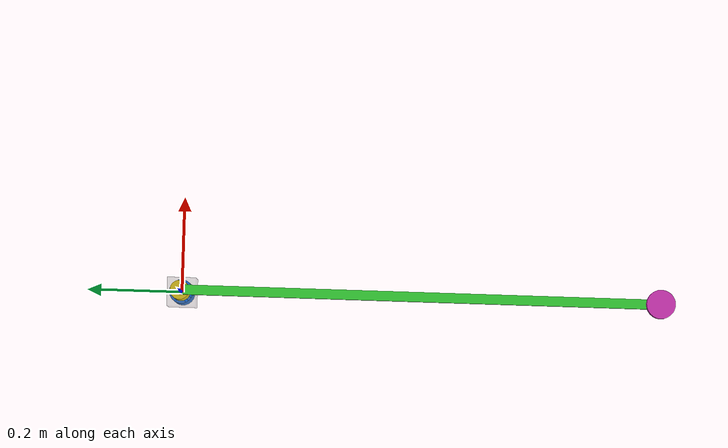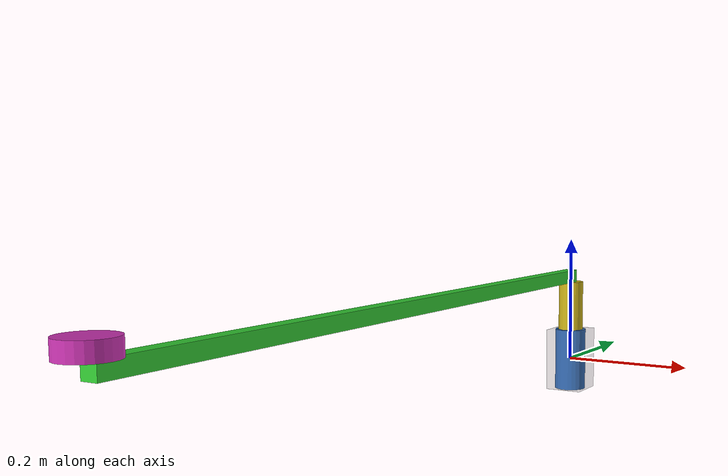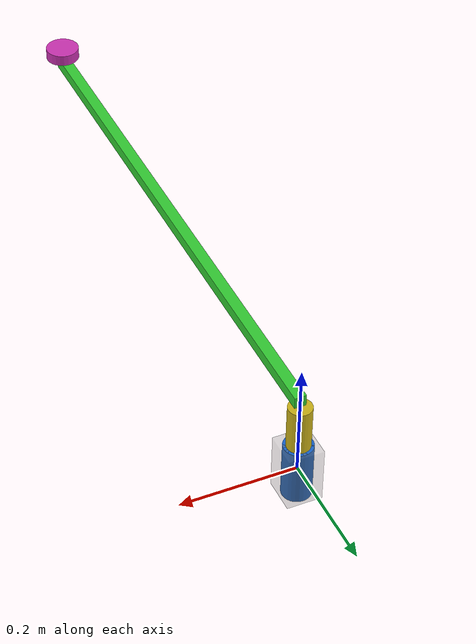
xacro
<?xml version="1.0"?>
<robot name="one_dof_pendulum" xmlns:xacro="http://www.ros.org/wiki/xacro">

    <xacro:include filename="$(find bam_descriptions)/urdf/common.xacro" />

    <xacro:include filename="$(find bam_descriptions)/urdf/one_dof/one_dof_macro.xacro" />

    <xacro:arg name="ros2_control" default="true"/>
    <xacro:property name="ros2_control" value="$(arg ros2_control)" />

    <xacro:arg name="transport_path" default=""/>
    <xacro:property name="transport_path" value="$(arg transport_path)" />

    <xacro:arg name="plugin" default="mock"/>  <!-- none, mock, gazebo, real -->
    <xacro:property name="plugin" value="$(arg plugin)" />

    <xacro:arg name="controllers_file_path" default="$(find bam_core_bringup)/config/controllers/one_dof_controllers.yaml"/>
    <xacro:property name="controllers_file_path" value="$(arg controllers_file_path)" />

    <xacro:arg name="ros_namespace" default="bam_GPU"/>
    <xacro:property name="ros_namespace" value="$(arg ros_namespace)" />

    <!-- Define args for all macro parameters with defaults, so they can be set from the outside -->
    <xacro:arg name="rotor_diameter" default="0.05"/>
    <xacro:arg name="rotor_length" default="0.1"/>
    <xacro:arg name="rotor_mass" default="0.2"/>
    <xacro:arg name="gearbox_diameter" default="0.04"/>
    <xacro:arg name="gearbox_length" default="0.08"/>
    <xacro:arg name="gearbox_mass" default="0.15"/>
    <xacro:arg name="arm_width" default="0.02"/>
    <xacro:arg name="arm_length" default="1.0"/>
    <xacro:arg name="arm_mass" default="0.05"/>
    <xacro:arg name="payload_diameter" default="0.06"/>
    <xacro:arg name="payload_thickness" default="0.02"/>
    <xacro:arg name="payload_mass" default="0.1"/>
    <xacro:arg name="payload_distance" default="1.0"/>
    <xacro:arg name="mounting_angle" default="0.0"/>

    <!-- Set properties from args for convenience -->
    <xacro:property name="rotor_diameter" value="$(arg rotor_diameter)"/>
    <xacro:property name="rotor_length" value="$(arg rotor_length)"/>
    <xacro:property name="rotor_mass" value="$(arg rotor_mass)"/>
    <xacro:property name="gearbox_diameter" value="$(arg gearbox_diameter)"/>
    <xacro:property name="gearbox_length" value="$(arg gearbox_length)"/>
    <xacro:property name="gearbox_mass" value="$(arg gearbox_mass)"/>
    <xacro:property name="arm_width" value="$(arg arm_width)"/>
    <xacro:property name="arm_length" value="$(arg arm_length)"/>
    <xacro:property name="arm_mass" value="$(arg arm_mass)"/>
    <xacro:property name="payload_diameter" value="$(arg payload_diameter)"/>
    <xacro:property name="payload_thickness" value="$(arg payload_thickness)"/>
    <xacro:property name="payload_mass" value="$(arg payload_mass)"/>
    <xacro:property name="payload_distance" value="$(arg payload_distance)"/>
    <xacro:property name="mounting_angle" value="$(arg mounting_angle)"/>

    <link name="world"/>   <!-- Attach to Gazebo World -->

    <joint name="world_to_base" type="fixed">
        <origin xyz="0 0 0" rpy="0 0 0"/>
        <parent link="world"/>
        <child link="base_link"/>
    </joint>

    <link name="base_link">
        <xacro:dummy_inertial/>
    </link>

    <joint name="base_link_to_motor_housing" type="fixed">
        <parent link="base_link"/>
        <child link="motor_housing"/>
        <origin xyz="0 0 0.0" rpy="${mounting_angle} 0 0"/>
    </joint>

        <!-- Instantiate the macro with all parameters -->
    <xacro:one_dof
        rotor_diameter="${rotor_diameter}"
        rotor_length="${rotor_length}"
        rotor_mass="${rotor_mass}"
        gearbox_diameter="${gearbox_diameter}"
        gearbox_length="${gearbox_length}"
        gearbox_mass="${gearbox_mass}"
        arm_width="${arm_width}"
        arm_length="${arm_length}"
        arm_mass="${arm_mass}"
        payload_diameter="${payload_diameter}"
        payload_thickness="${payload_thickness}"
        payload_mass="${payload_mass}"
        payload_distance="${payload_distance}"
    />

    <xacro:if value="${ros2_control}">
        <xacro:include filename="$(find bam_descriptions)/urdf/one_dof/one_dof.ros2_control.xacro"/>
        <xacro:one_dof_ros2_control plugin="${plugin}" transport_path="${transport_path}" controllers_file_path="${controllers_file_path}" ros_namespace="${ros_namespace}"/>
    </xacro:if>

</robot>

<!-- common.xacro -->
<robot xmlns:xacro="http://www.ros.org/wiki/xacro">

  <xacro:property name="deg2rad" value="${pi/180}"/>
  <xacro:property name="rev2rad" value="${2*pi}"/>
  <xacro:property name="inch2m" value="${25.4/1000}"/>
  <xacro:property name="mm2m" value="${1/1000}"/>

  <xacro:macro name="cylinder_tube_link" params="name outer_radius inner_radius length density origin_offset mass=-1 material='StoglRobotics/LightGrey'">
    <!-- Length goes along z axis -->

      <link name="${name}">

        <xacro:if value="${mass == -1}">
          <xacro:property name="outer_area" value="${outer_radius * outer_radius * pi}"/>
          <xacro:property name="inner_area" value="${inner_radius * inner_radius * pi}"/>
          <xacro:property name="volume" value="${length * (outer_area - inner_area)}"/>
          <xacro:property name="mass" value="${volume * density}"/>
        </xacro:if>

        <visual>
          <origin xyz="0 0 ${origin_offset}" rpy="0 0 0"/>
          <geometry>
              <cylinder length="${length}" radius="${outer_radius}"/>
          </geometry>
          <material name="${material}"/>
        </visual>

        <collision>
          <origin xyz="0 0 ${origin_offset}" rpy="0 0 0"/>
          <geometry>
              <cylinder length="${length}" radius="${outer_radius}"/>
          </geometry>
        </collision>

        <xacro:cylinder_inertial length="${length}" outer_radius="${outer_radius}" inner_radius="${inner_radius}" mass="${mass}" origin_xyz="0 0 ${origin_offset}"/>

      </link>
  </xacro:macro>

  <xacro:macro name="rectangular_tube_link"
      params="name width length height wall_thickness density origin_offset mass=-1 material='StoglRobotics/LightGrey'"> -->

      <!-- Length goes along y, width goes along x, height goes along z -->

      <!-- length goes from hole to hole, while link_total_length goes from outer edge to outer edge. To center link around holes, add width/2 to both ends -->
      <xacro:if value="${mass == -1}">
        <xacro:property name="outer_area" value="${width * height}"/>
        <xacro:property name="inner_area" value="${(width - 2*wall_thickness) * (height - 2*wall_thickness)}"/>
        <xacro:property name="volume" value="${length * (outer_area - inner_area)}"/>
        <xacro:property name="mass" value="${volume * density}"/>
      </xacro:if>

      <link name="${name}">

        <!-- It may make more sense to have origin in center of thickness, but when you export as cade, usally is done from edge -->
        <visual>
            <origin xyz="0 ${origin_offset} ${height/2}" rpy="0 0 0"/>
            <geometry>
                <box size="${width} ${length} ${height}"/>
            </geometry>
            <material name="${material}"/>
        </visual>

        <collision>
            <origin xyz="0 ${origin_offset} ${height/2}" rpy="0 0 0"/>
            <geometry>
                <box size="${width} ${length} ${height}"/>
            </geometry>
        </collision>

        <xacro:solid_cuboid_inertial width="${width}" height="${length}" depth="${height}" mass="${mass}" origin_xyz="0 ${origin_offset} ${height/2}"/>
      </link>

  </xacro:macro>

  <xacro:macro name="rectangular_plate_link" params="name width length plate_thickness density origin_offset mass=-1 material='StoglRobotics/LightGrey'">
      <!-- Origin offset is usally length/2 or length/2 + width/2 + width/2  -->
      <!-- length goes from hole to hole, while link_total_length goes from outer edge to outer edge. To center link around holes, add width/2 to both ends -->

      <!-- Length goes along y, width goes along x, thickness goes along z -->

      <xacro:if value="${mass == -1}">
        <xacro:property name="volume" value="${length * width * plate_thickness}"/>
        <xacro:property name="mass" value="${volume * density}"/>
      </xacro:if>

      <!-- It may make more sense to have origin in center of thickness, but when you export as cade, usally is done from edge -->
      <link name="${name}">

      <visual>
          <origin xyz="0 ${origin_offset} ${plate_thickness/2}" rpy="0 0 0"/>
          <geometry>
              <box size="${width} ${length} ${plate_thickness}"/>
          </geometry>
          <material name="${material}"/>
      </visual>

      <collision>
          <origin xyz="0 ${origin_offset} ${plate_thickness/2}" rpy="0 0 0"/>
          <geometry>
              <box size="${width} ${length} ${plate_thickness}"/>
          </geometry>
      </collision>

      <xacro:solid_cuboid_inertial width="${width}" height="${length}" depth="${plate_thickness}" mass="${mass}" origin_xyz="0 ${origin_offset} ${plate_thickness/2}"/>
      </link>

  </xacro:macro>

  <!-- https://en.wikipedia.org/wiki/List_of_moments_of_inertia#:~:text=Solid%20cuboid%20of%20width -->
  <!-- Inertia properties for wrist_link, scoped to this macro only -->
  <!-- Width goes along x, height goes along y, depth goes along z -->
  <xacro:macro name="solid_cuboid_inertial" params="width height depth mass origin_xyz">
      <xacro:property name="inertia_xx" value="${(1/12) * mass * (height * height + depth * depth)}"/>
      <xacro:property name="inertia_yy" value="${(1/12) * mass * (width * width + depth * depth)}"/>
      <xacro:property name="inertia_zz" value="${(1/12) * mass * (width * width + height * height)}"/>
      <inertial>
          <origin xyz="${origin_xyz}"/>
          <mass value="${mass}"/>
          <inertia ixx="${inertia_xx}" ixy="0" ixz="0"
                    iyy="${inertia_yy}" iyz="0"
                    izz="${inertia_zz}"/>
      </inertial>
  </xacro:macro>

  <!-- https://en.wikipedia.org/wiki/List_of_moments_of_inertia#:~:text=%5D-,Solid%20cylinder%20of,-radius%20r%2C%20height -->
  <!-- Inertia properties for motor block, scoped to this macro only -->
  <!-- I initally thought it should be outer_radius - inner_radius, but actually a hollow cylinder should have a higher interia! as more mass further away -->
  <xacro:macro name="cylinder_inertial" params="length outer_radius mass origin_xyz inner_radius=0">
      <xacro:property name="inertia_xx" value="${(1/12) * mass * (3*(outer_radius*outer_radius + inner_radius*inner_radius) + length*length)}"/>
      <xacro:property name="inertia_yy" value="${(1/12) * mass * (3*(outer_radius*outer_radius + inner_radius*inner_radius) + length*length)}"/>
      <xacro:property name="inertia_zz" value="${0.5*mass*(outer_radius*outer_radius + inner_radius*inner_radius)}"/>
      <inertial>
          <origin xyz="${origin_xyz}"/>
          <mass value="${mass}"/>
          <inertia ixx="${inertia_xx}" ixy="0" ixz="0"
                    iyy="${inertia_yy}" iyz="0"
                    izz="${inertia_zz}"/>
      </inertial>
  </xacro:macro>

<xacro:macro name="dummy_inertial">
<!-- Super small interia to not effect dynamics and small rviz interia box -->
    <inertial>
        <mass value="0.0001"/>
        <origin xyz="0 0 0" rpy="0 0 0"/>
        <inertia
            ixx="0.001" ixy="0.00001" ixz="0.00001"
            iyy="0.001" iyz="0.00001"
            izz="0.001"/>
    </inertial>
</xacro:macro>

<xacro:macro name="dummy_link">

  <!-- Small visual box so that link can be turned off in rviz -->
  <visual>
    <origin xyz="0 0 0" rpy="0 0 0"/>
    <geometry>
      <box size="0.001 0.001 0.001"/>
    </geometry>
    <material name="transparent_gray">
      <color rgba="0.5 0.5 0.5 0.1"/>
    </material>
  </visual>

  <xacro:dummy_inertial/>

</xacro:macro>

  <material name="StoglRobotics/Violet">
    <color rgba="${102/255} ${46/255} ${145/255} 1.0"/>
    <ambient>1 0 0 1</ambient>
    <diffuse>1 0 0 1</diffuse>
    <specular>0.1 0.1 0.1 1</specular>
    <emissive>0 0 0 0</emissive>
  </material>

  <material name="StoglRobotics/DarkGrey">
    <color rgba="${51/255} ${51/255} ${51/255} 1.0"/>
    <ambient>1 0 0 1</ambient>
    <diffuse>1 0 0 1</diffuse>
    <specular>0.1 0.1 0.1 1</specular>
    <emissive>0 0 0 0</emissive>
  </material>

  <material name="StoglRobotics/LightGrey">
    <color rgba="${194/255} ${194/255} ${194/255} 1.0"/>
    <ambient>1 0 0 1</ambient>
    <diffuse>1 0 0 1</diffuse>
    <specular>0.1 0.1 0.1 1</specular>
    <emissive>0 0 0 0</emissive>
  </material>

  <material name="Ghost">
    <color rgba="${194/255} ${194/255} ${194/255} 0.5"/>
    <ambient>1 0 0 1</ambient>
    <diffuse>1 0 0 1</diffuse>
    <specular>0.1 0.1 0.1 1</specular>
    <emissive>0 0 0 0</emissive>
  </material>

  <material name="Black">
    <color rgba="${0/255} ${0/255} ${0/255} 1"/>
    <ambient>1 0 0 1</ambient>
    <diffuse>1 0 0 1</diffuse>
    <specular>0.1 0.1 0.1 1</specular>
    <emissive>0 0 0 0</emissive>
  </material>

  <material name="White">
    <color rgba="${255/255} ${255/255} ${255/255} 1"/>
    <ambient>1 0 0 1</ambient>
    <diffuse>1 0 0 1</diffuse>
    <specular>0.1 0.1 0.1 1</specular>
    <emissive>0 0 0 0</emissive>
  </material>

  <material name="Red">
    <color rgba="1.0 0.0 0.0 1.0"/>
    <ambient>1 0 0 1</ambient>
    <diffuse>1 0 0 1</diffuse>
    <specular>0.1 0.1 0.1 1</specular>
    <emissive>0 0 0 0</emissive>
  </material>

  <material name="Orange">
    <color rgba="1.0 0.55 0.0 1.0"/>
    <ambient>1 0.5 0 1</ambient>
    <diffuse>1 0.5 0 1</diffuse>
    <specular>0.1 0.1 0.1 1</specular>
    <emissive>0 0 0 0</emissive>
  </material>

  <material name="Yellow">
    <color rgba="1.0 1.0 0.0 1.0"/>
    <ambient>1 1 0 1</ambient>
    <diffuse>1 1 0 1</diffuse>
    <specular>0.1 0.1 0.1 1</specular>
    <emissive>0 0 0 0</emissive>
  </material>

  <material name="Green">
    <color rgba="0.0 1.0 0.0 1.0"/>
    <ambient>0 1 0 1</ambient>
    <diffuse>0 1 0 1</diffuse>
    <specular>0.1 0.1 0.1 1</specular>
    <emissive>0 0 0 0</emissive>
  </material>

  <material name="Blue">
    <color rgba="0.0 0.0 1.0 1.0"/>
    <ambient>0 0 1 1</ambient>
    <diffuse>0 0 1 1</diffuse>
    <specular>0.1 0.1 0.1 1</specular>
    <emissive>0 0 0 0</emissive>
  </material>

  <material name="Indigo">
    <color rgba="0.29 0.0 0.51 1.0"/>
    <ambient>0.25 0 0.45 1</ambient>
    <diffuse>0.25 0 0.45 1</diffuse>
    <specular>0.1 0.1 0.1 1</specular>
    <emissive>0 0 0 0</emissive>
  </material>

  <material name="Violet">
    <color rgba="0.56 0.0 1.0 1.0"/>
    <ambient>0.5 0 1 1</ambient>
    <diffuse>0.5 0 1 1</diffuse>
    <specular>0.1 0.1 0.1 1</specular>
    <emissive>0 0 0 0</emissive>
  </material>

</robot>

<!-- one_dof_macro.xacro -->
<robot name="one_dof" xmlns:xacro="http://www.ros.org/wiki/xacro">

<xacro:macro name="one_dof" params="
    rotor_diameter
    rotor_length
    rotor_mass
    gearbox_diameter
    gearbox_length
    gearbox_mass
    arm_width
    arm_length
    arm_mass
    payload_diameter
    payload_thickness
    payload_mass
    payload_distance
      ">

  <!-- Parameter definitions for easy adjustment -->
  <!-- 3D moment of interia's from https://en.wikipedia.org/wiki/List_of_moments_of_inertia#:~:text=List%20of%203D%20inertia%20tensors -->
  <xacro:property name="rotor_diameter" value="$(arg rotor_diameter)"/>
  <xacro:property name="rotor_radius" value="${rotor_diameter/2}"/>
  <xacro:property name="rotor_length" value="$(arg rotor_length)"/>
  <xacro:property name="rotor_mass" value="$(arg rotor_mass)"/>
  <xacro:property name="rotor_inertia_zz" value="${10*10 * (0.58/(100*100))}"/> <!-- J_load = N**2 * J_rotor and kg*cm^2 -> kg*m^2 -->
  <xacro:property name="rotor_inertia_xx_yy" value="${rotor_inertia_zz * (0.5 + (rotor_length*rotor_radius/(6*rotor_radius*rotor_radius)))}"/> <!-- given the zz, calculate the xx and yy -->

  <xacro:property name="gearbox_diameter" value="$(arg gearbox_diameter)"/>
  <xacro:property name="gearbox_radius" value="${gearbox_diameter/2}"/>
  <xacro:property name="gearbox_length" value="$(arg gearbox_length)"/>
  <xacro:property name="gearbox_mass" value="$(arg gearbox_mass)"/>
  <xacro:property name="gearbox_inertia_zz" value="${0.13/(100*100)}"/> <!-- kg*cm^2 -> kg*m^2 -->
  <xacro:property name="gearbox_inertia_xx_yy" value="${gearbox_inertia_zz * (0.5 + (gearbox_length*gearbox_radius/(6*gearbox_radius*gearbox_radius)))}"/> <!-- given the zz, calculate the xx and yy -->

  <xacro:property name="arm_width" value="$(arg arm_width)"/>
  <xacro:property name="arm_length" value="$(arg arm_length)"/>
  <xacro:property name="arm_mass" value="$(arg arm_mass)"/>
  <xacro:property name="arm_inertia_xx_zz" value="${(1/12) * arm_mass * arm_length*arm_length}"/>

  <xacro:property name="payload_diameter" value="$(arg payload_diameter)"/>
  <xacro:property name="payload_radius" value="${payload_diameter/2}"/>
  <xacro:property name="payload_thickness" value="$(arg payload_thickness)"/>
  <xacro:property name="payload_mass" value="$(arg payload_mass)"/>
  <xacro:property name="payload_distance" value="$(arg payload_distance)"/>

  <!-- You don't acctually need the parrallel axis thoerm, urdf iwll handle that! -->
  <xacro:property name="payload_inertia_zz" value="${(0.5 * payload_mass * payload_radius*payload_radius)}"/> <!-- interia + parrallel axis theorem -->
  <xacro:property name="payload_inertia_xx_yy" value="${((1/12) * payload_mass * (3*payload_radius*payload_radius + payload_thickness*payload_thickness))}"/> <!-- interia + parrallel axis theorem -->

  <!-- Material definitions -->
  <material name="motor_housing">
    <color rgba="0.5 0.5 0.5 0.3"/>
  </material>

  <material name="rotor">
    <color rgba="0.1 0.4 0.8 1.0"/> <!-- blueish -->
  </material>

  <material name="gearbox">
    <color rgba="0.8 0.7 0.1 1.0"/> <!-- yellow/gold -->
  </material>

  <material name="arm">
    <color rgba="0.2 0.8 0.2 1.0"/> <!-- green -->
  </material>

  <material name="payload">
    <color rgba="0.8 0.2 0.7 1.0"/> <!-- magenta/pink -->
  </material>

  <link name="motor_housing">
    <visual>
      <geometry>
        <box size="${rotor_diameter*1.2} ${rotor_diameter*1.2} ${rotor_length}"/>
      </geometry>
      <material name="motor_housing"/>
    </visual>
  </link>

  <!-- rotor core cylinder -->
  <link name="rotor">
    <visual>
      <geometry>
        <cylinder radius="${rotor_diameter/2}" length="${rotor_length}"/>
      </geometry>
      <material name="rotor"/>
    </visual>
    <collision>
      <geometry>
        <cylinder radius="${rotor_diameter/2}" length="${rotor_length}"/>
      </geometry>
    </collision>
    <inertial>
      <origin xyz="0 0 0"/>
      <mass value="${rotor_mass}"/>
      <inertia ixx="${rotor_inertia_xx_yy}" ixy="0" ixz="0"
                iyy="${rotor_inertia_xx_yy}" iyz="0"
                izz="${rotor_inertia_zz}"/>
    </inertial>

  </link>

  <!-- Joint connecting rotor core to base -->
  <joint name="joint_1" type="revolute">
    <parent link="motor_housing"/>
    <child link="rotor"/>
    <origin xyz="0 0 0" rpy="0 0 ${-pi/2}"/>
    <axis xyz="0 0 1"/>
    <limit lower="${-2*pi}" upper="${2*pi}" effort="10" velocity="5"/>
    <dynamics damping="0.01" friction="0.1"/>

  </joint>

  <!-- Gearbox cylinder -->
  <link name="gearbox">
    <visual>
      <geometry>
        <cylinder radius="${gearbox_diameter/2}" length="${gearbox_length}"/>
      </geometry>
      <material name="gearbox"/>
    </visual>
    <collision>
      <geometry>
        <cylinder radius="${gearbox_diameter/2}" length="${gearbox_length}"/>
      </geometry>
    </collision>
    <inertial>
      <origin xyz="0 0 0"/>
      <mass value="${gearbox_mass}"/>
      <inertia ixx="${gearbox_inertia_xx_yy}" ixy="0" ixz="0"
                iyy="${gearbox_inertia_xx_yy}" iyz="0"
                izz="${gearbox_inertia_zz}"/>
    </inertial>
  </link>

  <!-- Joint connecting gearbox to rotor core -->
  <joint name="gearbox_joint" type="fixed">
    <parent link="rotor"/>
    <child link="gearbox"/>
    <origin xyz="0 0 ${gearbox_length/2 + rotor_length/2}" rpy="0 0 0"/>
  </joint>

  <!-- Pendulum arm (thin rectangular link) -->
  <link name="arm">
    <visual>
      <origin xyz="${arm_length/2} 0 0" rpy="0 ${pi/2} 0"/>
      <geometry>
        <box size="${arm_width} ${arm_width} ${arm_length}"/>
      </geometry>
      <material name="arm"/>
    </visual>
    <collision>
      <origin xyz="${arm_length/2} 0 0" rpy="0 ${pi/2} 0"/>
      <geometry>
        <box size="${arm_width} ${arm_width} ${arm_length}"/>
      </geometry>
    </collision>
    <inertial>
      <origin xyz="${arm_length/2} 0 0"/>
      <mass value="${arm_mass}"/>
      <inertia ixx="1e-6" ixy="0" ixz="0"
                iyy="${arm_inertia_xx_zz}" iyz="0"
                izz="${arm_inertia_xx_zz}"/>
    </inertial>
  </link>

  <!-- Joint connecting pendulum arm to gearbox (revolute joint) -->
  <joint name="gearbox_to_arm" type="fixed">
    <parent link="gearbox"/>
    <child link="arm"/>
    <origin xyz="0 0 ${gearbox_length/2 + arm_width/2}" rpy="0 0 0"/>
    <axis xyz="0 0 1"/>
    <limit lower="-3.14159" upper="3.14159" effort="10" velocity="5"/>
    <!-- Zero position is when pendulum is pointing down -->
  </joint>

  <!-- Weight disk at the end of pendulum -->
  <link name="payload">
    <visual>
      <geometry>
        <cylinder radius="${payload_diameter/2}" length="${payload_thickness}"/>
      </geometry>
      <material name="payload"/>
    </visual>
    <collision>
      <geometry>
        <cylinder radius="${payload_diameter/2}" length="${payload_thickness}"/>
      </geometry>
    </collision>
    <inertial>
      <origin xyz="0 0 0"/>
      <mass value="${payload_mass}"/>
      <inertia ixx="${payload_inertia_xx_yy}" ixy="0" ixz="0"
                    iyy="${payload_inertia_xx_yy}" iyz="0"
                    izz="${payload_inertia_zz}"/>
    </inertial>
  </link>

  <!-- Joint connecting payload to pendulum arm -->
  <joint name="arm_to_payload" type="fixed">
    <parent link="arm"/>
    <child link="payload"/>
    <origin xyz="${payload_distance} 0 ${payload_thickness/2 + arm_width/2}" rpy="0 0 0"/>
  </joint>

</xacro:macro>
</robot>
